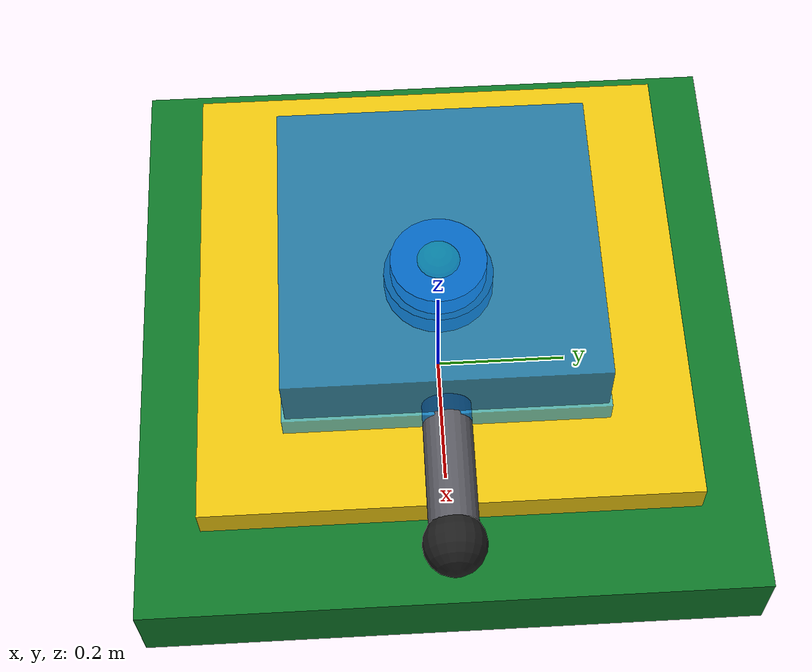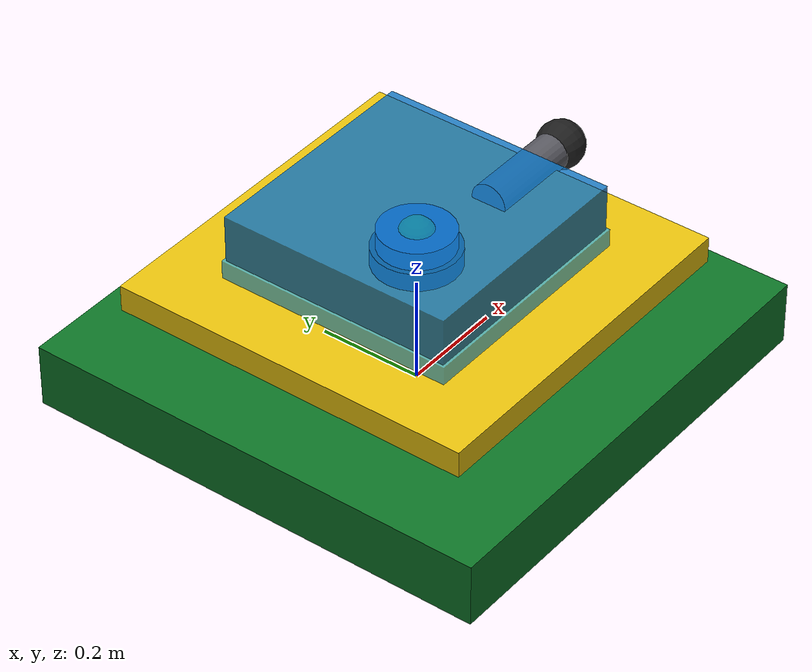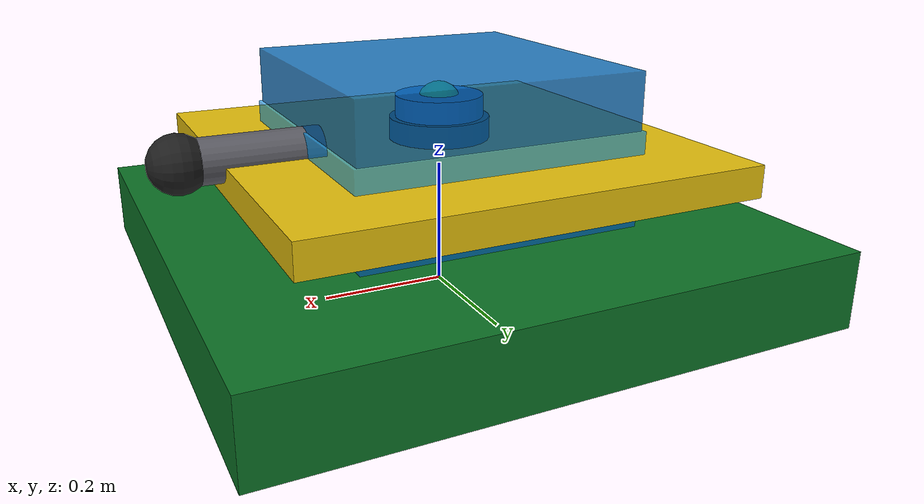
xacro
<?xml version="1.0"?>
<robot xmlns:xacro="http://www.ros.org/wiki/xacro" name="arbotrix_bot">

  <!-- Properties -->

  <xacro:property name="base_size" value="0.90"/>
  <xacro:property name="base_length" value="0.12"/>

  <xacro:property name="wheel_radius" value="0.05"/>
  <xacro:property name="wheel_width" value="0.03"/>
  <xacro:property name="wheel_separation" value="0.30"/>

  <xacro:property name="y_reflect" value="1"/>

  <!-- Materials -->

  <material name="dark_green">
    <color rgba="0.05 0.45 0.15 1"/>
  </material>

  <material name="black">
    <color rgba="0.1 0.1 0.1 1"/>
  </material>

  <material name="yellow">
    <color rgba="0.9 0.75 0.05 1"/>
  </material>

  <material name="lidar_blue">
    <color rgba="0.05 0.3 0.9 1"/>
  </material>

  <material name="tank_blue">
    <color rgba="0.05 0.45 0.75 0.85"/>
  </material>

  <material name="water_blue">
    <color rgba="0.05 0.65 1.0 0.65"/>
  </material>

  <material name="pump_black">
    <color rgba="0.08 0.08 0.08 1"/>
  </material>

  <material name="indicator_green">
    <color rgba="0.1 0.9 0.1 1"/>
  </material>

  <material name="metal">
    <color rgba="0.35 0.35 0.38 1"/>
  </material>

  <material name="dark_metal">
    <color rgba="0.12 0.12 0.12 1"/>
  </material>

  <!-- Base Footprint -->

  <link name="base_footprint"/>

  <joint name="base_joint" type="fixed">
    <parent link="base_footprint"/>
    <child link="base_link"/>
    <origin xyz="0 0 0.07" rpy="0 0 0"/>
  </joint>

  <!-- Main Robot Body -->

  <link name="base_link">

    <visual>
      <origin xyz="0 0 0" rpy="0 0 0"/>
      <geometry>
        <box size="${base_size} ${base_size} ${base_length}"/>
      </geometry>
      <material name="dark_green"/>
    </visual>

    <collision>
      <origin xyz="0 0 0" rpy="0 0 0"/>
      <geometry>
        <box size="${base_size} ${base_size} ${base_length}"/>
      </geometry>
    </collision>

    <inertial>
      <mass value="10.0"/>
      <origin xyz="0 0 0"/>
      <inertia
        ixx="0.70"
        ixy="0.0"
        ixz="0.0"
        iyy="0.70"
        iyz="0.0"
        izz="0.70"/>
    </inertial>

  </link>

  <!-- WATER TANK -->

  <link name="water_tank_link">

    <visual>
      <origin xyz="0 0 0.15" rpy="0 0 0"/>
      <geometry>
        <box size="0.45 0.45 0.30"/>
      </geometry>
      <material name="tank_blue"/>
    </visual>

    <inertial>
      <mass value="0.0001"/>
      <origin xyz="0 0 0"/>
      <inertia
        ixx="0.000001"
        ixy="0"
        ixz="0"
        iyy="0.000001"
        iyz="0"
        izz="0.000001"/>
    </inertial>

  </link>

  <joint name="water_tank_joint" type="fixed">
    <parent link="base_link"/>
    <child link="water_tank_link"/>
    <origin xyz="0 0 0"/>
  </joint>

  <!-- WATER LEVEL -->

  <link name="water_level_link">

    <visual>
      <origin xyz="0 0 0.15" rpy="0 0 0"/>
      <geometry>
        <box size="0.46 0.46 0.12"/>
      </geometry>
      <material name="water_blue"/>
    </visual>

    <inertial>
      <mass value="0.0001"/>
      <origin xyz="0 0 0"/>
      <inertia
        ixx="0.000001"
        ixy="0"
        ixz="0"
        iyy="0.000001"
        iyz="0"
        izz="0.000001"/>
    </inertial>

  </link>

  <joint name="water_level_joint" type="fixed">
    <parent link="base_link"/>
    <child link="water_level_link"/>
    <origin xyz="0 0 0"/>
  </joint>

  <!-- PUMP HOUSING -->

  <link name="water_pump_link">

    <visual>
      <origin xyz="0 0 0.15" rpy="0 0 0"/>
      <geometry>
        <cylinder radius="0.08" length="0.12"/>
      </geometry>
      <material name="pump_black"/>
    </visual>

    <inertial>
      <mass value="0.0001"/>
      <origin xyz="0 0 0"/>
      <inertia
        ixx="0.000001"
        ixy="0"
        ixz="0"
        iyy="0.000001"
        iyz="0"
        izz="0.000001"/>
    </inertial>

  </link>

  <joint name="water_pump_joint" type="fixed">
    <parent link="base_link"/>
    <child link="water_pump_link"/>
    <origin xyz="0 0 0"/>
  </joint>

  <!-- PUMP INDICATOR -->

  <link name="pump_indicator_link">

    <visual>
      <origin xyz="0 0 0.23" rpy="0 0 0"/>
      <geometry>
        <sphere radius="0.035"/>
      </geometry>
      <material name="indicator_green"/>
    </visual>

    <inertial>
      <mass value="0.0001"/>
      <origin xyz="0 0 0"/>
      <inertia
        ixx="0.000001"
        ixy="0"
        ixz="0"
        iyy="0.000001"
        iyz="0"
        izz="0.000001"/>
    </inertial>

  </link>

  <joint name="pump_indicator_joint" type="fixed">
    <parent link="base_link"/>
    <child link="pump_indicator_link"/>
    <origin xyz="0 0 0"/>
  </joint>

  <!-- SPRAY NOZZLE -->

  <link name="spray_nozzle_link">

    <visual>
      <origin xyz="0.30 0 0.18" rpy="0 1.5708 0"/>
      <geometry>
        <cylinder radius="0.035" length="0.20"/>
      </geometry>
      <material name="metal"/>
    </visual>

    <inertial>
      <mass value="0.0001"/>
      <origin xyz="0 0 0"/>
      <inertia
        ixx="0.000001"
        ixy="0"
        ixz="0"
        iyy="0.000001"
        iyz="0"
        izz="0.000001"/>
    </inertial>

  </link>

  <joint name="spray_nozzle_joint" type="fixed">
    <parent link="base_link"/>
    <child link="spray_nozzle_link"/>
    <origin xyz="0 0 0"/>
  </joint>

  <!-- NOZZLE TIP -->

  <link name="nozzle_tip_link">

    <visual>
      <origin xyz="0.41 0 0.18" rpy="0 1.5708 0"/>
      <geometry>
        <sphere radius="0.045"/>
      </geometry>
      <material name="dark_metal"/>
    </visual>

    <inertial>
      <mass value="0.0001"/>
      <origin xyz="0 0 0"/>
      <inertia
        ixx="0.000001"
        ixy="0"
        ixz="0"
        iyy="0.000001"
        iyz="0"
        izz="0.000001"/>
    </inertial>

  </link>

  <joint name="nozzle_tip_joint" type="fixed">
    <parent link="base_link"/>
    <child link="nozzle_tip_link"/>
    <origin xyz="0 0 0"/>
  </joint>

  <!-- LEFT WHEEL -->

  <link name="left_wheel_link">

    <visual>
      <origin xyz="0 0 0" rpy="1.5708 0 0"/>
      <geometry>
        <cylinder radius="${wheel_radius}" length="${wheel_width}"/>
      </geometry>
      <material name="black"/>
    </visual>

    <collision>
      <origin xyz="0 0 0" rpy="1.5708 0 0"/>
      <geometry>
        <cylinder radius="${wheel_radius}" length="${wheel_width}"/>
      </geometry>
    </collision>

    <inertial>
      <mass value="0.5"/>
      <origin xyz="0 0 0"/>
      <inertia
        ixx="0.001"
        ixy="0"
        ixz="0"
        iyy="0.001"
        iyz="0"
        izz="0.001"/>
    </inertial>

  </link>

  <joint name="left_wheel_joint" type="continuous">
    <parent link="base_link"/>
    <child link="left_wheel_link"/>
    <origin xyz="0 ${y_reflect * wheel_separation / 2} -0.02" rpy="0 0 0"/>
    <axis xyz="0 1 0"/>
  </joint>

  <!-- RIGHT WHEEL -->

  <link name="right_wheel_link">

    <visual>
      <origin xyz="0 0 0" rpy="1.5708 0 0"/>
      <geometry>
        <cylinder radius="${wheel_radius}" length="${wheel_width}"/>
      </geometry>
      <material name="black"/>
    </visual>

    <collision>
      <origin xyz="0 0 0" rpy="1.5708 0 0"/>
      <geometry>
        <cylinder radius="${wheel_radius}" length="${wheel_width}"/>
      </geometry>
    </collision>

    <inertial>
      <mass value="0.5"/>
      <origin xyz="0 0 0"/>
      <inertia
        ixx="0.001"
        ixy="0"
        ixz="0"
        iyy="0.001"
        iyz="0"
        izz="0.001"/>
    </inertial>

  </link>

  <joint name="right_wheel_joint" type="continuous">
    <parent link="base_link"/>
    <child link="right_wheel_link"/>
    <origin xyz="0 ${-y_reflect * wheel_separation / 2} -0.02" rpy="0 0 0"/>
    <axis xyz="0 1 0"/>
  </joint>

  <!-- CASTER -->

  <link name="caster_wheel_link">

    <visual>
      <origin xyz="0 0 0" rpy="0 0 0"/>
      <geometry>
        <sphere radius="0.025"/>
      </geometry>
      <material name="black"/>
    </visual>

    <collision>
      <origin xyz="0 0 0" rpy="0 0 0"/>
      <geometry>
        <sphere radius="0.025"/>
      </geometry>
    </collision>

    <inertial>
      <mass value="0.2"/>
      <origin xyz="0 0 0"/>
      <inertia
        ixx="0.0001"
        ixy="0"
        ixz="0"
        iyy="0.0001"
        iyz="0"
        izz="0.0001"/>
    </inertial>

  </link>

  <joint name="caster_wheel_joint" type="fixed">
    <parent link="base_link"/>
    <child link="caster_wheel_link"/>
    <origin xyz="0.15 0 -0.045" rpy="0 0 0"/>
  </joint>

  <!-- UPPER DECK -->

  <link name="upper_deck">

    <visual>
      <origin xyz="0 0 0" rpy="0 0 0"/>
      <geometry>
        <box size="0.70 0.70 0.05"/>
      </geometry>
      <material name="yellow"/>
    </visual>

    <inertial>
      <mass value="0.5"/>
      <origin xyz="0 0 0"/>
      <inertia
        ixx="0.02"
        ixy="0"
        ixz="0"
        iyy="0.02"
        iyz="0"
        izz="0.02"/>
    </inertial>

  </link>

  <joint name="upper_deck_joint" type="fixed">
    <parent link="base_link"/>
    <child link="upper_deck"/>
    <origin xyz="0 0 0.15" rpy="0 0 0"/>
  </joint>

  <!-- LIDAR -->

  <link name="lidar_link">

    <visual>
      <origin xyz="0 0 0" rpy="0 0 0"/>
      <geometry>
        <cylinder radius="0.07" length="0.05"/>
      </geometry>
      <material name="lidar_blue"/>
    </visual>

    <inertial>
      <mass value="0.1"/>
      <origin xyz="0 0 0"/>
      <inertia
        ixx="0.0001"
        ixy="0"
        ixz="0"
        iyy="0.0001"
        iyz="0"
        izz="0.0001"/>
    </inertial>

  </link>

  <joint name="lidar_joint" type="fixed">
    <parent link="base_link"/>
    <child link="lidar_link"/>
    <origin xyz="0 0 0.22" rpy="0 0 0"/>
  </joint>

  <!-- GAZEBO MATERIAL OVERRIDES -->

  <gazebo reference="base_link">
    <material>Gazebo/Green</material>
  </gazebo>

  <gazebo reference="left_wheel_link">
    <material>Gazebo/Black</material>
  </gazebo>

  <gazebo reference="right_wheel_link">
    <material>Gazebo/Black</material>
  </gazebo>

  <gazebo reference="caster_wheel_link">
    <material>Gazebo/Black</material>
  </gazebo>

  <gazebo reference="upper_deck">
    <material>Gazebo/Yellow</material>
  </gazebo>

  <gazebo reference="lidar_link">
    <material>Gazebo/Blue</material>
  </gazebo>

  <gazebo reference="water_tank_link">
    <material>Gazebo/Blue</material>
  </gazebo>

  <gazebo reference="water_level_link">
    <material>Gazebo/Blue</material>
  </gazebo>

  <gazebo reference="water_pump_link">
    <material>Gazebo/Black</material>
  </gazebo>

  <gazebo reference="pump_indicator_link">
    <material>Gazebo/Green</material>
  </gazebo>

  <gazebo reference="spray_nozzle_link">
    <material>Gazebo/Grey</material>
  </gazebo>

  <gazebo reference="nozzle_tip_link">
    <material>Gazebo/Black</material>
  </gazebo>

  <!-- DIFFERENTIAL DRIVE -->

  <gazebo>

    <plugin name="diff_drive"
            filename="libgazebo_ros_diff_drive.so">

      <ros>
        <namespace>/</namespace>
      </ros>

      <update_rate>30</update_rate>

      <left_joint>left_wheel_joint</left_joint>
      <right_joint>right_wheel_joint</right_joint>

      <wheel_separation>0.30</wheel_separation>
      <wheel_diameter>0.10</wheel_diameter>

      <max_wheel_torque>20</max_wheel_torque>
      <max_wheel_acceleration>1.0</max_wheel_acceleration>

      <command_topic>cmd_vel</command_topic>

      <publish_odom>true</publish_odom>
      <publish_odom_tf>true</publish_odom_tf>
      <publish_wheel_tf>true</publish_wheel_tf>

      <odometry_topic>odom</odometry_topic>
      <odometry_frame>odom</odometry_frame>
      <robot_base_frame>base_footprint</robot_base_frame>

    </plugin>

  </gazebo>

  <!-- PUMP PLUGIN -->

  <gazebo>

    <plugin name="pump_plugin"
            filename="libpump_plugin.so"/>

  </gazebo>

  <!-- LIDAR SENSOR -->

  <gazebo reference="lidar_link">

    <sensor name="lidar_sensor" type="ray">

      <visualize>false</visualize>
      <always_on>true</always_on>
      <update_rate>10</update_rate>

      <ray>

        <scan>

          <horizontal>
            <samples>360</samples>
            <resolution>1</resolution>
            <min_angle>-3.14159</min_angle>
            <max_angle>3.14159</max_angle>
          </horizontal>

        </scan>

        <range>
          <min>0.12</min>
          <max>10.0</max>
          <resolution>0.01</resolution>
        </range>

      </ray>

      <plugin name="gazebo_ros_laser"
              filename="libgazebo_ros_ray_sensor.so">

        <ros>
          <remapping>~/out:=/scan</remapping>
        </ros>

        <output_type>sensor_msgs/LaserScan</output_type>

      </plugin>

    </sensor>

  </gazebo>

</robot>
